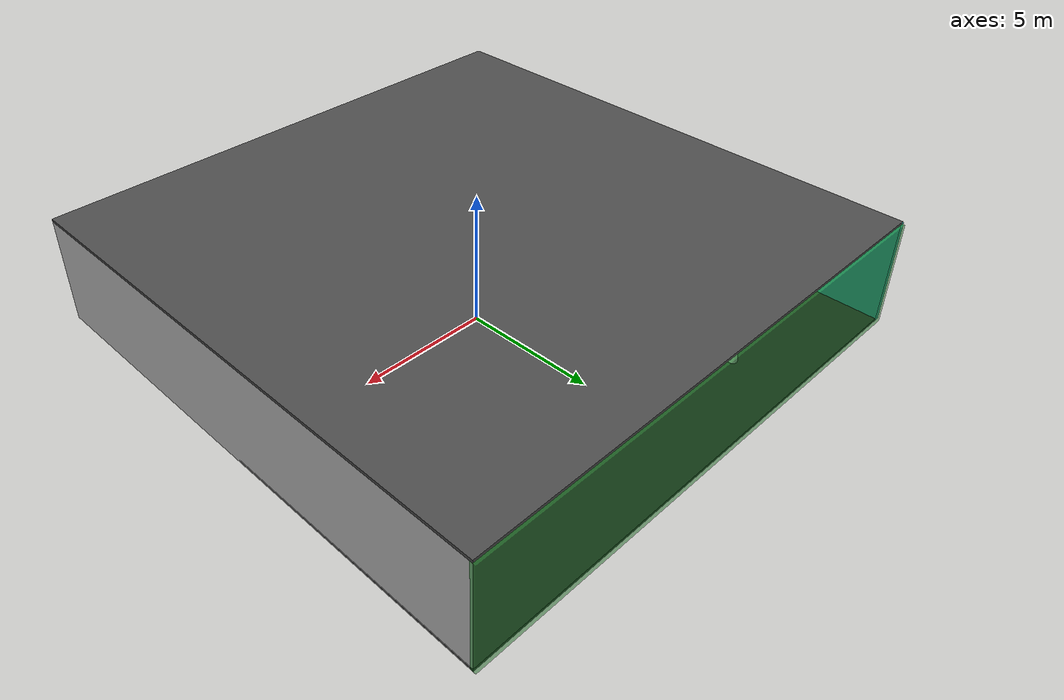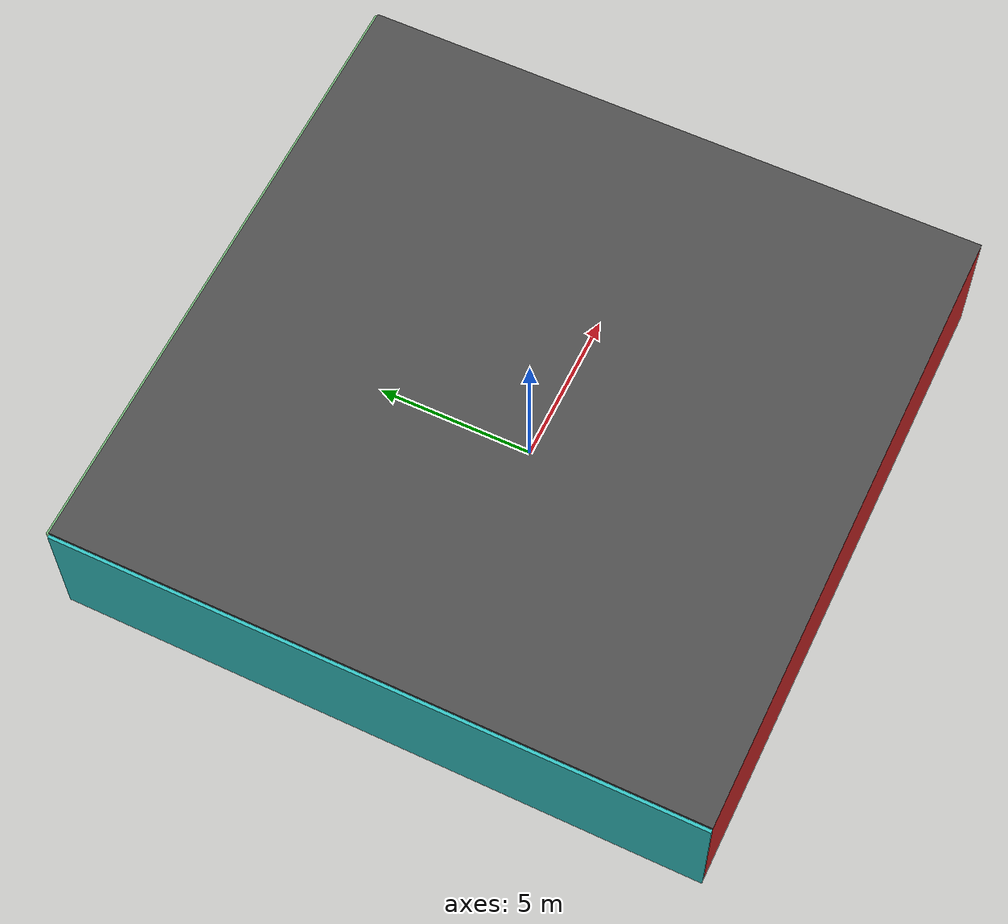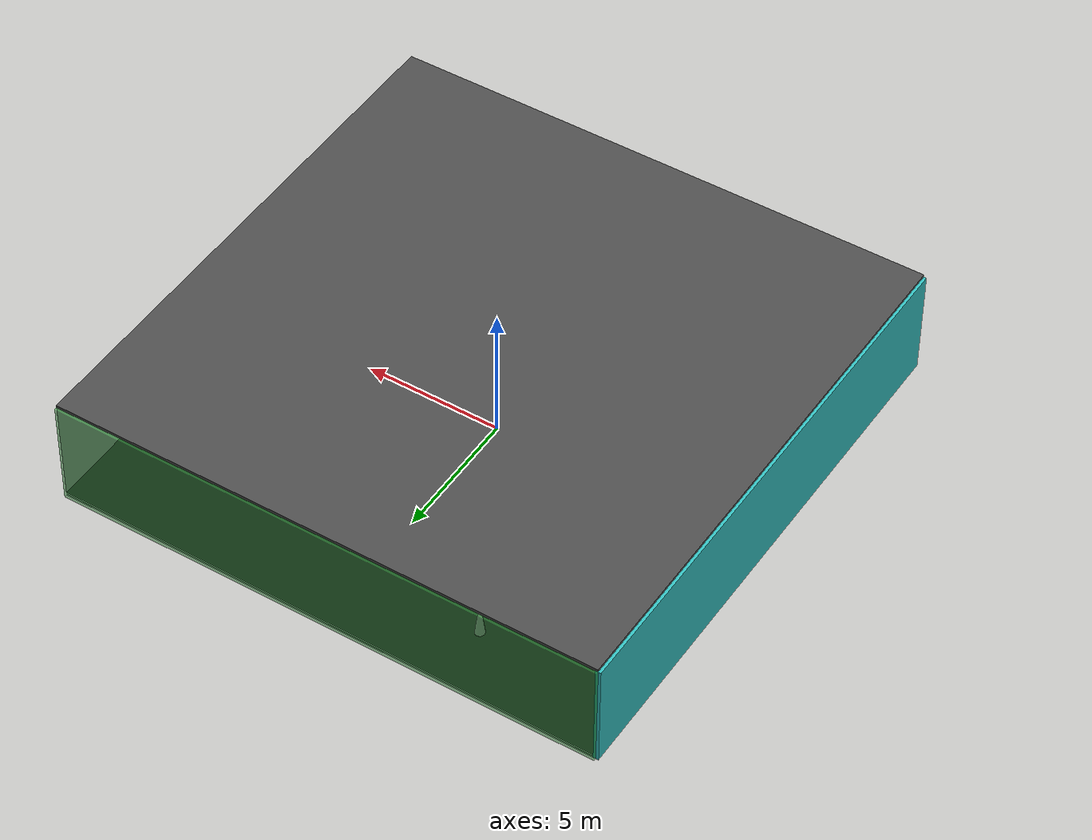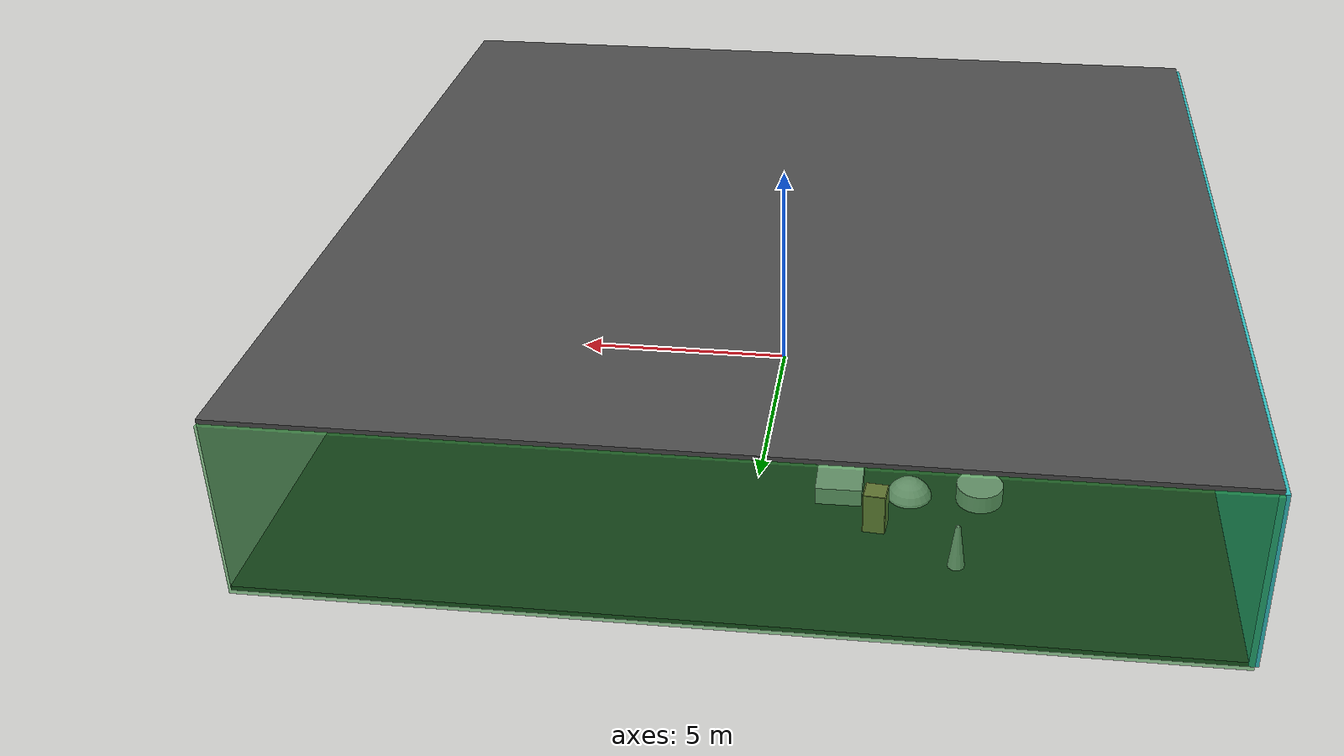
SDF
<sdf version="1.4">
 <world name="default">
  <physics type="ode">
   <max_step_size>0.001</max_step_size>
   <real_time_factor>1</real_time_factor>
   <real_time_update_rate>1000</real_time_update_rate>
   <gravity>0 0 -9.8</gravity>
  </physics>
  <scene><ambient>0.4 0.4 0.4 1</ambient><background>0.7 0.7 0.7 1</background><shadows>1</shadows></scene>
  <model name="Surrounding">
   <static>1</static>
   <link name="Ceiling">
    <collision name="Ceiling_Collision"><geometry><box><size>20 20 0.1</size></box></geometry></collision>
    <visual name="Ceiling_Visual">
     <geometry><box><size>20 20 0.1</size></box></geometry>
     <material>
      <script><uri>file://media/materials/scripts/gazebo.material</uri><name>Gazebo/DarkGrey</name></script>
     </material>
    </visual>
    <pose>0 0 4.05 0 0 0</pose>
   </link>
   <link name="Wall_South">
    <collision name="Wall_South_Collision">
     <geometry><box><size>20 0 4</size></box></geometry>
     <pose>0 0 2 0 -0 0</pose>
    </collision>
    <visual name="Wall_South_Visual">
     <pose>0 0 2 0 -0 0</pose>
     <geometry><box><size>20 0 4</size></box></geometry>
     <material>
      <script><uri>file://media/materials/scripts/gazebo.material</uri><name>Gazebo/RedGlow</name></script>
     </material>
    </visual>
    <velocity_decay><linear>0</linear><angular>0</angular></velocity_decay>
    <pose>0 -10 0 0 -0 0</pose>
   </link>
   <link name="Wall_East">
    <collision name="Wall_21_Collision">
     <geometry><box><size>20 0 4</size></box></geometry>
     <pose>0 0 2 0 -0 0</pose>
    </collision>
    <visual name="Wall_21_Visual">
     <pose>0 0 2 0 -0 0</pose>
     <geometry><box><size>20 0 4</size></box></geometry>
     <material>
      <script><uri>file://media/materials/scripts/gazebo.material</uri><name>Gazebo/JointAnchor</name></script>
     </material>
    </visual>
    <velocity_decay><linear>0</linear><angular>0</angular></velocity_decay>
    <pose>10 0 0 0 -0 1.5708</pose>
   </link>
   <link name="Wall_North">
    <collision name="Wall_22_Collision">
     <geometry><box><size>20 0.2 4</size></box></geometry>
     <pose>0 0 2 0 -0 0</pose>
    </collision>
    <visual name="Wall_22_Visual">
     <pose>0 0 2 0 -0 0</pose>
     <geometry><box><size>20 0.2 4</size></box></geometry>
     <material>
      <script><uri>file://media/materials/scripts/gazebo.material</uri><name>Gazebo/GreenTransparent</name></script>
     </material>
    </visual>
    <velocity_decay><linear>0</linear><angular>0</angular></velocity_decay>
    <pose>0 10 0 0 -0 0</pose>
   </link>
   <link name="Wall_West">
    <collision name="Wall_23_Collision">
     <geometry><box><size>20 0.2 4</size></box></geometry>
     <pose>0 0 2 0 -0 0</pose>
    </collision>
    <visual name="Wall_23_Visual">
     <pose>0 0 2 0 -0 0</pose>
     <geometry><box><size>20 0.2 4</size></box></geometry>
     <material>
      <script><uri>file://media/materials/scripts/gazebo.material</uri><name>Gazebo/Turquoise</name></script>
     </material>
    </visual>
    <velocity_decay><linear>0</linear><angular>0</angular></velocity_decay>
    <pose>-10 0 0 0 0 -1.5708</pose>
   </link>
   <link name="Ground_link">
    <collision name="collision">
     <pose>0 0 .05 0 -0 0</pose>
     <geometry><box><size>20 20 0.1</size></box></geometry>
    </collision>
    <visual name="visual">
     <pose>0 0 .05 0 -0 0</pose>
     <geometry><box><size>20 20 0.1</size></box></geometry>
     <material>
      <script><uri>file://media/materials/scripts/gazebo.material</uri><name>Gazebo/Black</name></script>
     </material>
    </visual>
   </link>
   <static>1</static>
  </model>
  <spherical_coordinates>
   <surface_model>EARTH_WGS84</surface_model>
   <latitude_deg>0</latitude_deg>
   <longitude_deg>0</longitude_deg>
   <elevation>0</elevation>
   <heading_deg>0</heading_deg>
  </spherical_coordinates>
  <light name="lightball_0" type="diffuse">
   <diffuse>0.8 0.8 0.8 1</diffuse>
   <specular>0.2 0.2 0.2 1</specular>
   <attenuation>
    <range>100</range>
    <constant>0.7</constant>
    <linear>0.01</linear>
    <quadratic>0.001</quadratic>
   </attenuation>
   <direction>-0.5 0.1 -0.9</direction>
   <pose>8.43083204741 -2.13683343958 1.40653904007 0 0 0</pose>
  </light>
  <light name="lightball_1" type="diffuse">
   <diffuse>0.8 0.8 0.8 1</diffuse>
   <specular>0.2 0.2 0.2 1</specular>
   <attenuation>
    <range>100</range>
    <constant>0.7</constant>
    <linear>0.01</linear>
    <quadratic>0.001</quadratic>
   </attenuation>
   <direction>-0.5 0.1 -0.9</direction>
   <pose>-4.36322849643 8.47418562055 0.952567049157 0 0 0</pose>
  </light>
  <light name="lightball_2" type="diffuse">
   <diffuse>0.8 0.8 0.8 1</diffuse>
   <specular>0.2 0.2 0.2 1</specular>
   <attenuation>
    <range>100</range>
    <constant>0.7</constant>
    <linear>0.01</linear>
    <quadratic>0.001</quadratic>
   </attenuation>
   <direction>-0.5 0.1 -0.9</direction>
   <pose>-6.98170372658 -7.4001257777 3.56001419111 0 0 0</pose>
  </light>
  <light name="lightball_3" type="diffuse">
   <diffuse>0.8 0.8 0.8 1</diffuse>
   <specular>0.2 0.2 0.2 1</specular>
   <attenuation>
    <range>100</range>
    <constant>0.7</constant>
    <linear>0.01</linear>
    <quadratic>0.001</quadratic>
   </attenuation>
   <direction>-0.5 0.1 -0.9</direction>
   <pose>3.68261748643 -4.53415582868 2.94546533309 0 0 0</pose>
  </light>
  <light name="lightball_4" type="diffuse">
   <diffuse>0.8 0.8 0.8 1</diffuse>
   <specular>0.2 0.2 0.2 1</specular>
   <attenuation>
    <range>100</range>
    <constant>0.7</constant>
    <linear>0.01</linear>
    <quadratic>0.001</quadratic>
   </attenuation>
   <direction>-0.5 0.1 -0.9</direction>
   <pose>9.57443940154 3.61211751175 3.49431331838 0 0 0</pose>
  </light>
  <light name="lightball_5" type="diffuse">
   <diffuse>0.8 0.8 0.8 1</diffuse>
   <specular>0.2 0.2 0.2 1</specular>
   <attenuation>
    <range>100</range>
    <constant>0.7</constant>
    <linear>0.01</linear>
    <quadratic>0.001</quadratic>
   </attenuation>
   <direction>-0.5 0.1 -0.9</direction>
   <pose>4.68611468581 2.15835713619 1.85876387724 0 0 0</pose>
  </light>
  <light name="lightball_6" type="diffuse">
   <diffuse>0.8 0.8 0.8 1</diffuse>
   <specular>0.2 0.2 0.2 1</specular>
   <attenuation>
    <range>100</range>
    <constant>0.7</constant>
    <linear>0.01</linear>
    <quadratic>0.001</quadratic>
   </attenuation>
   <direction>-0.5 0.1 -0.9</direction>
   <pose>1.64717361774 1.30532580881 2.95433498277 0 0 0</pose>
  </light>
  <light name="lightball_7" type="diffuse">
   <diffuse>0.8 0.8 0.8 1</diffuse>
   <specular>0.2 0.2 0.2 1</specular>
   <attenuation>
    <range>100</range>
    <constant>0.7</constant>
    <linear>0.01</linear>
    <quadratic>0.001</quadratic>
   </attenuation>
   <direction>-0.5 0.1 -0.9</direction>
   <pose>5.94729669362 0.343930755881 1.96841775064 0 0 0</pose>
  </light>
  <include>
   <uri>model://robocup_3Dsim_goal</uri>
   <pose>-6.96140273084 -3.71249800681 0 0 0 1.10525882441</pose>
  </include>
  <include>
   <uri>model://textured_shapes</uri>
   <pose>-6.61203260419 1.85823076231 0 0 0 0.501728679186</pose>
  </include>
  <include><uri>model://cabinet</uri><pose>-4.12642486902 -6.93255393047 0 0 0 1.746113949</pose></include>
  <include>
   <uri>model://construction_cone</uri>
   <pose>-4.74961822895 -5.15948195649 0 0 0 2.99993829547</pose>
  </include>
  <include>
   <uri>model://textured_shapes</uri>
   <pose>-3.32357736028 5.4838564252 0 0 0 1.57926091855</pose>
  </include>
  <include>
   <uri>model://construction_cone</uri>
   <pose>-4.37250835911 7.74828079643 0 0 0 1.60360605387</pose>
  </include>
  <include><uri>model://cabinet</uri><pose>-2.65689469159 6.6305793548 0 0 0 1.48250798623</pose></include>
  <include><uri>model://cabinet</uri><pose>6.68598650992 2.31568847581 0 0 0 1.75995306628</pose></include>
 </world>
</sdf>

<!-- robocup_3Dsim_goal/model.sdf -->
<sdf version="1.5">
  <model name="robocup_3d_goal">
    <static>true</static>
    <link name="left_post">
      <pose>0 1.05 0.45 0 0 0</pose>
      <collision name="collision">
        <geometry>
          <cylinder>
            <radius>0.05</radius>
            <length>0.9</length>
          </cylinder>
        </geometry>
      </collision>
      <visual name="visual">
        <geometry>
          <cylinder>
            <radius>0.05</radius>
            <length>0.9</length>
          </cylinder>
        </geometry>
        <material>
          <script>
            <uri>file://media/materials/scripts/gazebo.material</uri>
            <name>Gazebo/ZincYellow</name>
          </script>
        </material>
      </visual>
    </link>
    <link name="left_support_horiz_lower">
      <pose>0.30 1.05 0.01 0 0 0</pose>
      <collision name="collision">
        <geometry>
          <box>
            <size>0.50 0.02 0.02</size>
          </box>
        </geometry>
      </collision>
      <visual name="visual">
        <geometry>
          <box>
            <size>0.50 0.02 0.02</size>
          </box>
        </geometry>
        <material>
          <script>
            <uri>file://media/materials/scripts/gazebo.material</uri>
            <name>Gazebo/White</name>
          </script>
        </material>
      </visual>
    </link>
    <link name="left_support_horiz_upper">
      <pose>0.30 1.05 0.79 0 0 0</pose>
      <collision name="collision">
        <geometry>
          <box>
            <size>0.50 0.02 0.02</size>
          </box>
        </geometry>
      </collision>
      <visual name="visual">
        <geometry>
          <box>
            <size>0.50 0.02 0.02</size>
          </box>
        </geometry>
        <material>
          <script>
            <uri>file://media/materials/scripts/gazebo.material</uri>
            <name>Gazebo/White</name>
          </script>
        </material>
      </visual>
    </link>
    <link name="left_support_vertical">
      <pose>0.56 1.05 0.4 0 1.5708 0</pose>
      <collision name="collision">
        <geometry>
          <box>
            <size>0.80 0.02 0.02</size>
          </box>
        </geometry>
      </collision>
      <visual name="visual">
        <geometry>
          <box>
            <size>0.80 0.02 0.02</size>
          </box>
        </geometry>
        <material>
          <script>
            <uri>file://media/materials/scripts/gazebo.material</uri>
            <name>Gazebo/White</name>
          </script>
        </material>
      </visual>
    </link>
    <link name="right_support_horiz_lower">
      <pose>0.30 -1.05 0.01 0 0 0</pose>
      <collision name="collision">
        <geometry>
          <box>
            <size>0.50 0.02 0.02</size>
          </box>
        </geometry>
      </collision>
      <visual name="visual">
        <geometry>
          <box>
            <size>0.50 0.02 0.02</size>
          </box>
        </geometry>
        <material>
          <script>
            <uri>file://media/materials/scripts/gazebo.material</uri>
            <name>Gazebo/White</name>
          </script>
        </material>
      </visual>
    </link>
    <link name="right_support_horiz_upper">
      <pose>0.30 -1.05 0.79 0 0 0</pose>
      <collision name="collision">
        <geometry>
          <box>
            <size>0.50 0.02 0.02</size>
          </box>
        </geometry>
      </collision>
      <visual name="visual">
        <geometry>
          <box>
            <size>0.50 0.02 0.02</size>
          </box>
        </geometry>
        <material>
          <script>
            <uri>file://media/materials/scripts/gazebo.material</uri>
            <name>Gazebo/White</name>
          </script>
        </material>
      </visual>
    </link>
    <link name="right_support_vertical">
      <pose>0.56 -1.05 0.4 0 1.5708 0</pose>
      <collision name="collision">
        <geometry>
          <box>
            <size>0.80 0.02 0.02</size>
          </box>
        </geometry>
      </collision>
      <visual name="visual">
        <geometry>
          <box>
            <size>0.80 0.02 0.02</size>
          </box>
        </geometry>
        <material>
          <script>
            <uri>file://media/materials/scripts/gazebo.material</uri>
            <name>Gazebo/White</name>
          </script>
        </material>
      </visual>
    </link>
    <link name="center_support_horiz_lower">
      <pose>0.56 0 0.01 0 1.5708 0</pose>
      <collision name="collision">
        <geometry>
          <box>
            <size>0.02 2.08 0.02</size>
          </box>
        </geometry>
      </collision>
      <visual name="visual">
        <geometry>
          <box>
            <size>0.02 2.08 0.02</size>
          </box>
        </geometry>
        <material>
          <script>
            <uri>file://media/materials/scripts/gazebo.material</uri>
            <name>Gazebo/White</name>
          </script>
        </material>
      </visual>
    </link>
    <link name="center_support_horiz_upper">
      <pose>0.56 0 0.79 0 1.5708 0</pose>
      <collision name="collision">
        <geometry>
          <box>
            <size>0.02 2.08 0.02</size>
          </box>
        </geometry>
      </collision>
      <visual name="visual">
        <geometry>
          <box>
            <size>0.02 2.08 0.02</size>
          </box>
        </geometry>
        <material>
          <script>
            <uri>file://media/materials/scripts/gazebo.material</uri>
            <name>Gazebo/White</name>
          </script>
        </material>
      </visual>
    </link>
    <link name="right_post">
      <pose>0 -1.05 0.45 0 0 0</pose>
      <collision name="collision">
        <geometry>
          <cylinder>
            <radius>0.05</radius>
            <length>0.9</length>
          </cylinder>
        </geometry>
      </collision>
      <visual name="visual">
        <geometry>
          <cylinder>
            <radius>0.05</radius>
            <length>0.9</length>
          </cylinder>
        </geometry>
        <material>
          <script>
            <uri>file://media/materials/scripts/gazebo.material</uri>
            <name>Gazebo/ZincYellow</name>
          </script>
        </material>
      </visual>
    </link>
    <link name="crossbar">
      <pose>0 0 0.85 1.57 1.57 0</pose>
      <collision name="collision">
        <geometry>
          <cylinder>
            <radius>0.05</radius>
            <length>2.0</length>
          </cylinder>
        </geometry>
      </collision>
      <visual name="visual">
        <geometry>
          <cylinder>
            <radius>0.05</radius>
            <length>2.0</length>
          </cylinder>
        </geometry>
        <material>
          <script>
            <uri>file://media/materials/scripts/gazebo.material</uri>
            <name>Gazebo/ZincYellow</name>
          </script>
        </material>
      </visual>
    </link>
    <link name="center_net">
      <pose>0.56 0 0.40 0 0 0</pose>
      <collision name="collision">
        <geometry>
          <box>
            <size>0.01 2.1 0.80</size>
          </box>
        </geometry>
      </collision>
      <visual name="visual">
        <geometry>
          <box>
            <size>0.01 2.1 0.80</size>
          </box>
        </geometry>
        <material>
          <script>
            <uri>model://../model_source/models/robocup09_spl_field/materials/scripts/</uri>
            <uri>model://../model_source/models/robocup09_spl_field/materials/textures/</uri>
            <name>RoboCup/Net</name>
          </script>
        </material>
      </visual>
    </link>
    <link name="left_net">
      <pose>0.30 1.05 0.40 0 0 0</pose>
      <collision name="collision">
        <geometry>
          <box>
            <size>0.50 0.01 0.76</size>
          </box>
        </geometry>
      </collision>
      <visual name="visual">
        <geometry>
          <box>
            <size>0.50 0.01 0.76</size>
          </box>
        </geometry>
        <material>
          <script>
            <uri>model://../model_source/models/robocup09_spl_field/materials/scripts/</uri>
            <uri>model://../model_source/models/robocup09_spl_field/materials/textures/</uri>
            <name>RoboCup/Net</name>
          </script>
        </material>
      </visual>
    </link>
    <link name="right_net">
      <pose>0.30 -1.05 0.40 0 0 0</pose>
      <collision name="collision">
        <geometry>
          <box>
            <size>0.50 0.01 0.76</size>
          </box>
        </geometry>
      </collision>
      <visual name="visual">
        <geometry>
          <box>
            <size>0.50 0.01 0.76</size>
          </box>
        </geometry>
        <material>
          <script>
            <uri>model://../model_source/models/robocup09_spl_field/materials/scripts/</uri>
            <uri>model://../model_source/models/robocup09_spl_field/materials/textures/</uri>
            <name>RoboCup/Net</name>
          </script>
        </material>
      </visual>
    </link>
  </model>
</sdf>

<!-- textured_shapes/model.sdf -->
<sdf version="1.6">
  <model name="textured_shapes">
    <pose>0 0 0.5 0 0 0</pose>
    <link name="box">
      <pose>0 -1.5 0 0 0 0</pose>
      <collision name="collision">
        <geometry>
          <box>
            <size>1 1 1</size>
          </box>
        </geometry>
      </collision>
      <visual name="visual">
        <geometry>
          <box>
            <size>1 1 1</size>
          </box>
        </geometry>
        <material>
          <script>
            <uri>model://../model_source/models/textured_shapes/materials/scripts</uri>
            <uri>model://../model_source/models/textured_shapes/materials/textures</uri>
            <name>TexturedShape/Squares</name>
          </script>
        </material>
      </visual>
    </link>
    <link name="sphere">
      <collision name="collision">
        <geometry>
          <sphere>
            <radius>0.5</radius>
          </sphere>
        </geometry>
      </collision>
      <visual name="visual">
        <geometry>
          <sphere>
            <radius>0.5</radius>
          </sphere>
        </geometry>
        <material>
          <script>
            <uri>model://../model_source/models/textured_shapes/materials/scripts</uri>
            <uri>model://../model_source/models/textured_shapes/materials/textures</uri>
            <name>TexturedShape/Squares</name>
          </script>
        </material>
      </visual>
    </link>
    <link name="cylinder">
      <pose>0 1.5 0 0 0 0</pose>
      <collision name="collision">
        <geometry>
          <cylinder>
            <radius>0.5</radius>
            <length>1</length>
          </cylinder>
        </geometry>
      </collision>
      <visual name="visual">
        <geometry>
          <cylinder>
            <radius>0.5</radius>
            <length>1</length>
          </cylinder>
        </geometry>
        <material>
          <script>
            <uri>model://../model_source/models/textured_shapes/materials/scripts</uri>
            <uri>model://../model_source/models/textured_shapes/materials/textures</uri>
            <name>TexturedShape/Squares</name>
          </script>
        </material>
      </visual>
    </link>
  </model>
</sdf>

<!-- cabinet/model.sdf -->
<sdf version="1.5">
  <model name="cabinet">
    <static>true</static>
    <link name="cabinet_bottom_plate">
      <inertial>
        <pose>0 0 -1 0 0 0</pose>
        <inertia>
          <ixx>2.050000</ixx>
          <ixy>0</ixy>
          <ixz>0</ixz>
          <iyy>2.050000</iyy>
          <iyz>0</iyz>
          <izz>2.050000</izz>
        </inertia>
        <mass>25.000000</mass>
      </inertial>
      <collision name="cabinet_bottom_plate_geom">
        <pose>0 0 0.010000 0 0 0</pose>
        <geometry>
          <box>
            <size>0.450000 0.450000 0.020000</size>
          </box>
        </geometry>
      </collision>
      <visual name="cabinet_bottom_plate_geom_visual">
        <pose>0 0 0.010000 0 0 0</pose>
        <geometry>
          <box>
            <size>0.450000 0.450000 0.020000</size>
          </box>
        </geometry>
        <material>
          <script>
            <uri>model://media/materials/scripts/gazebo.material</uri>
            <name>Gazebo/Wood</name>
          </script>
        </material>
      </visual>
      <collision name="cabinet_bottom_plate_geom_cabinet_back_plate">
        <pose>0.235000 0 0.510000 0 0 0</pose>
        <geometry>
          <box>
            <size>0.020000 0.450000 1.020000</size>
          </box>
        </geometry>
      </collision>
      <visual name="cabinet_bottom_plate_geom_cabinet_back_plate_visual">
        <pose>0.235000 0 0.510000 0 0 0</pose>
        <geometry>
          <box>
            <size>0.020000 0.450000 1.020000</size>
          </box>
        </geometry>
        <material>
          <script>
            <uri>model://media/materials/scripts/gazebo.material</uri>
            <name>Gazebo/Wood</name>
          </script>
        </material>
      </visual>
      <collision name="cabinet_bottom_plate_geom_cabinet_left_plate">
        <pose>0 0.235000 0.510000 0 0 0</pose>
        <geometry>
          <box>
            <size>0.450000 0.020000 1.020000</size>
          </box>
        </geometry>
      </collision>
      <visual name="cabinet_bottom_plate_geom_cabinet_left_plate_visual">
        <pose>0 0.235000 0.510000 0 0 0</pose>
        <geometry>
          <box>
            <size>0.450000 0.020000 1.020000</size>
          </box>
        </geometry>
        <material>
          <script>
            <uri>model://media/materials/scripts/gazebo.material</uri>
            <name>Gazebo/Wood</name>
          </script>
        </material>
      </visual>
      <collision name="cabinet_bottom_plate_geom_cabinet_middle_plate">
        <pose>0 0 0.510000 0 0 0</pose>
        <geometry>
          <box>
            <size>0.450000 0.450000 0.020000</size>
          </box>
        </geometry>
      </collision>
      <visual name="cabinet_bottom_plate_geom_cabinet_middle_plate_visual">
        <pose>0 0 0.510000 0 0 0</pose>
        <geometry>
          <box>
            <size>0.450000 0.450000 0.020000</size>
          </box>
        </geometry>
        <material>
          <script>
            <uri>model://media/materials/scripts/gazebo.material</uri>
            <name>Gazebo/Wood</name>
          </script>
        </material>
      </visual>
      <collision name="cabinet_bottom_plate_geom_cabinet_right_plate">
        <pose>0 -0.235000 0.510000 0 0 0</pose>
        <geometry>
          <box>
            <size>0.450000 0.020000 1.020000</size>
          </box>
        </geometry>
      </collision>
      <visual name="cabinet_bottom_plate_geom_cabinet_right_plate_visual">
        <pose>0 -0.235000 0.510000 0 0 0</pose>
        <geometry>
          <box>
            <size>0.450000 0.020000 1.020000</size>
          </box>
        </geometry>
        <material>
          <script>
            <uri>model://media/materials/scripts/gazebo.material</uri>
            <name>Gazebo/Wood</name>
          </script>
        </material>
      </visual>
      <collision name="cabinet_bottom_plate_geom_cabinet_top_plate">
        <pose>0 0 1.010000 0 0 0</pose>
        <geometry>
          <box>
            <size>0.450000 0.450000 0.020000</size>
          </box>
        </geometry>
      </collision>
      <visual name="cabinet_bottom_plate_geom_cabinet_top_plate_visual">
        <pose>0 0 1.010000 0 0 0</pose>
        <geometry>
          <box>
            <size>0.450000 0.450000 0.020000</size>
          </box>
        </geometry>
        <material>
          <script>
            <uri>model://media/materials/scripts/gazebo.material</uri>
            <name>Gazebo/Wood</name>
          </script>
        </material>
      </visual>
    </link>
  </model>
</sdf>

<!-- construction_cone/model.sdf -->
<sdf version="1.5">
  <model name="Construction Cone">
    <link name="link">
      <collision name="collision">
        <geometry>
          <mesh>
            <scale>10 10 10</scale>
            <uri>file://isr-testbed/construction_cone/meshes/construction_cone.dae</uri>
          </mesh>
        </geometry>
      </collision>
      <visual name="visual">
        <geometry>
          <mesh>
            <scale>10 10 10</scale>
            <uri>file://isr-testbed/construction_cone/meshes/construction_cone.dae</uri>
          </mesh>
        </geometry>
      </visual>
    </link>
  </model>
</sdf>
